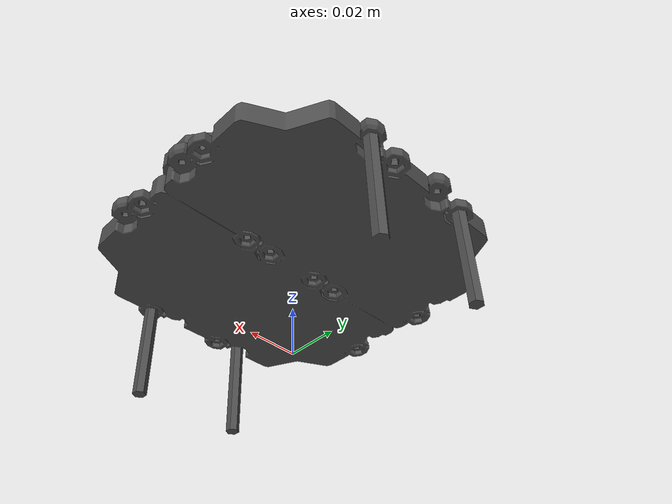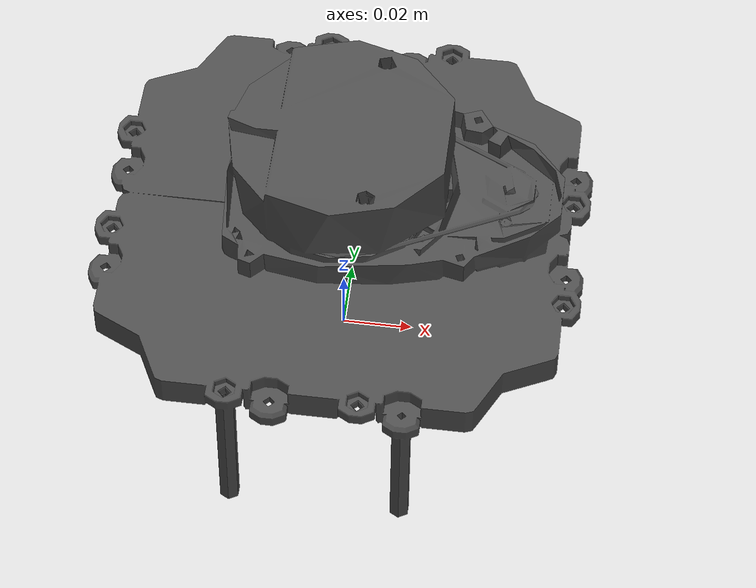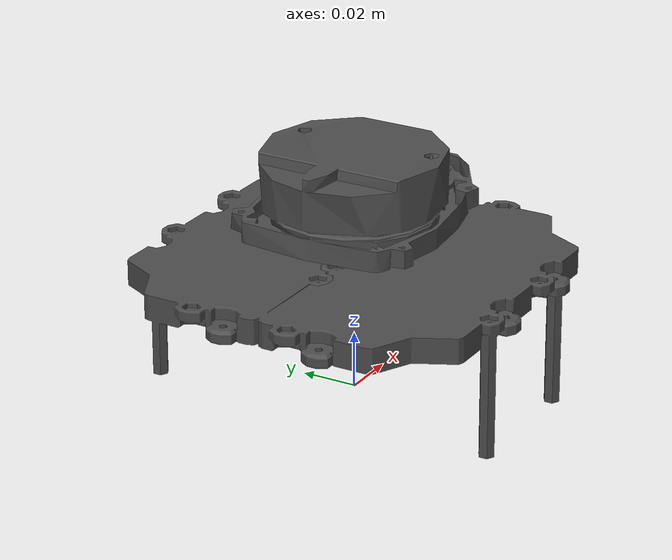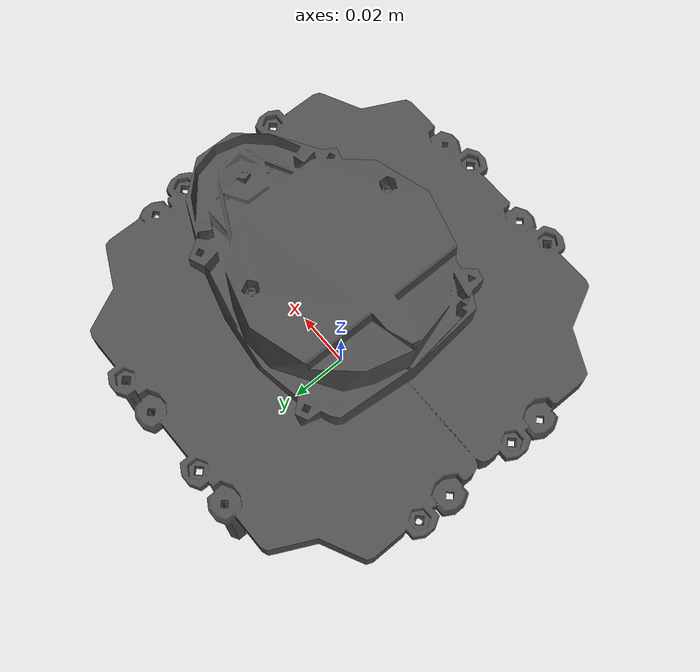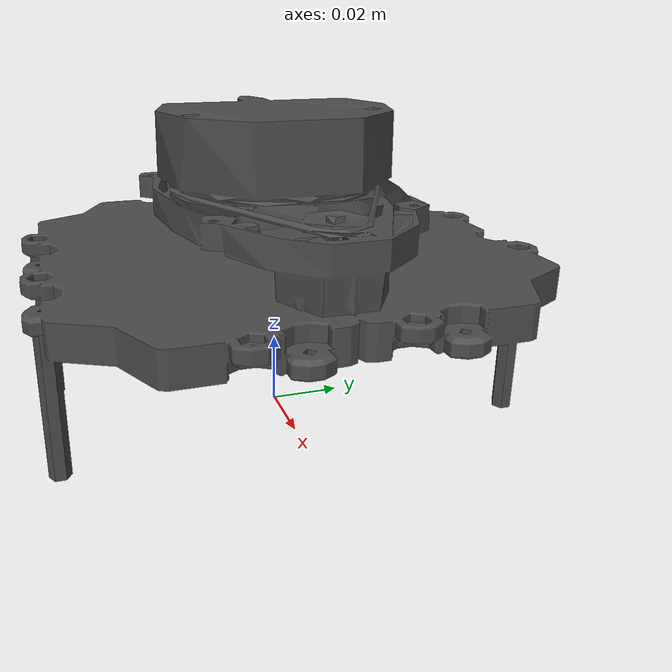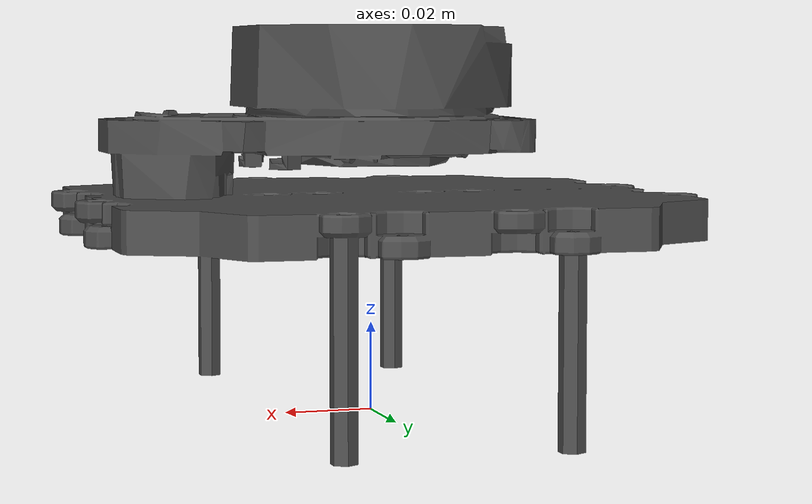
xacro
<?xml version="1.0"?>
<robot name="hls_lfcd_lds" xmlns:xacro="http://ros.org/wiki/xacro">
    <link name="scan_struct_link">
        <visual>
            <origin xyz="0 0 0" rpy="0 0 ${pi/2}"/>
            <geometry>
                <mesh filename="package://locobot_description/meshes/scan_struct.STL"
                      scale="0.001 0.001 0.001"/>
            </geometry>
            <material name="">
                <color rgba="0.3 0.3 0.3 1"/>
            </material>
        </visual>
        <collision>
            <origin xyz="0 0 0.025" rpy="0 0 0"/>
            <geometry>
                <cylinder length="0.05" radius="0.08"/>
            </geometry>
        </collision>
        <inertial>
            <mass value="1e-5"/>
            <origin xyz="0 0 0.025" rpy="0 0 0"/>
            <inertia ixx="1e-6" ixy="0.0"  ixz="0.0"
                                iyy="1e-6" iyz="0.0"
                                           izz="1e-6"/>
        </inertial>
    </link>

    <joint name="scan_joint" type="fixed">
        <origin xyz="0 0 0.078" rpi="0 0 0"/>
        <parent link="scan_struct_link"/>
        <child link="scan_link"/>
    </joint>
    <link name="scan_link">
        <visual>
            <origin xyz="0 0 0.0" rpy="0 0 0"/>
            <geometry>
                <mesh filename="package://turtlebot3_description/meshes/sensors/lds.stl"
                      scale="0.001 0.001 0.001"/>
            </geometry>
            <material name="">
                <color rgba="0.3 0.3 0.3 1"/>
            </material>
        </visual>
        <collision>
            <origin xyz="0.015 0 -0.0065" rpy="0 0 0"/>
            <geometry>
                <cylinder length="0.0315" radius="0.055"/>
            </geometry>
        </collision>
        <inertial>
            <mass value="0.114"/>
            <origin xyz="0 0 0"/>
            <inertia ixx="0.001" ixy="0.0" ixz="0.0"
                     iyy="0.001" iyz="0.0"
                     izz="0.001"/>
        </inertial>
    </link>
</robot>
